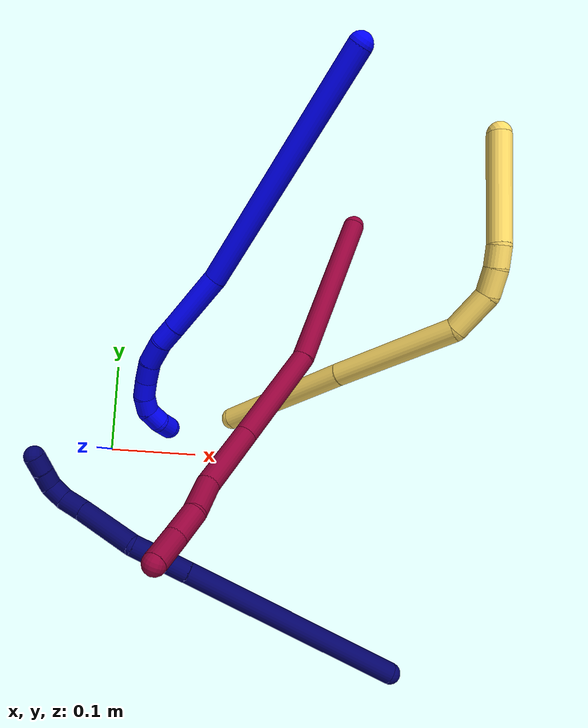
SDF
<sdf version="1.7">
 <world name="default">
  <model name="1">
   <static>0</static>
   <link name="1">
    <collision name="collision-cylinder-e_1_1_4">
     <pose>-0.006929 -0.001132 -0.133533 3.13311 -0.051844 -2.81745</pose>
     <geometry><cylinder><radius>0.0125</radius><length>0.267435</length></cylinder></geometry>
     <surface>
      <friction><ode><mu>1.16</mu><mu2>1.16</mu2><slip1>0</slip1><slip2>0</slip2></ode></friction>
      <contact><ode><kp>1e+06</kp><kd>1</kd><max_vel>0</max_vel><min_depth>0.001</min_depth></ode></contact>
     </surface>
    </collision>
    <visual name="visual-cylinder-e_1_1_4">
     <pose>-0.006929 -0.001132 -0.133533 3.13311 -0.051844 -2.81745</pose>
     <geometry><cylinder><radius>0.0125</radius><length>0.267435</length></cylinder></geometry>
     <material><ambient>0 0 1 1</ambient></material>
    </visual>
    <collision name="collision-cylinder-e_2_4_5">
     <pose>-0.017093 0.003114 -0.302254 -2.98992 -0.090601 1.07585</pose>
     <geometry><cylinder><radius>0.0125</radius><length>0.071485</length></cylinder></geometry>
     <surface>
      <friction><ode><mu>1.16</mu><mu2>1.16</mu2><slip1>0</slip1><slip2>0</slip2></ode></friction>
      <contact><ode><kp>1e+06</kp><kd>1</kd><max_vel>0</max_vel><min_depth>0.001</min_depth></ode></contact>
     </surface>
    </collision>
    <visual name="visual-cylinder-e_2_4_5">
     <pose>-0.017093 0.003114 -0.302254 -2.98992 -0.090601 1.07585</pose>
     <geometry><cylinder><radius>0.0125</radius><length>0.071485</length></cylinder></geometry>
     <material><ambient>0 0 1 1</ambient></material>
    </visual>
    <collision name="collision-cylinder-e_3_5_6">
     <pose>-0.020942 0.010312 -0.349431 -2.99099 -0.050726 0.648741</pose>
     <geometry><cylinder><radius>0.0125</radius><length>0.024286</length></cylinder></geometry>
     <surface>
      <friction><ode><mu>1.16</mu><mu2>1.16</mu2><slip1>0</slip1><slip2>0</slip2></ode></friction>
      <contact><ode><kp>1e+06</kp><kd>1</kd><max_vel>0</max_vel><min_depth>0.001</min_depth></ode></contact>
     </surface>
    </collision>
    <visual name="visual-cylinder-e_3_5_6">
     <pose>-0.020942 0.010312 -0.349431 -2.99099 -0.050726 0.648741</pose>
     <geometry><cylinder><radius>0.0125</radius><length>0.024286</length></cylinder></geometry>
     <material><ambient>0 0 1 1</ambient></material>
    </visual>
    <collision name="collision-cylinder-e_4_6_7">
     <pose>-0.021105 0.011157 -0.376634 3.07763 0.029693 0.869063</pose>
     <geometry><cylinder><radius>0.0125</radius><length>0.0305</length></cylinder></geometry>
     <surface>
      <friction><ode><mu>1.16</mu><mu2>1.16</mu2><slip1>0</slip1><slip2>0</slip2></ode></friction>
      <contact><ode><kp>1e+06</kp><kd>1</kd><max_vel>0</max_vel><min_depth>0.001</min_depth></ode></contact>
     </surface>
    </collision>
    <visual name="visual-cylinder-e_4_6_7">
     <pose>-0.021105 0.011157 -0.376634 3.07763 0.029693 0.869063</pose>
     <geometry><cylinder><radius>0.0125</radius><length>0.0305</length></cylinder></geometry>
     <material><ambient>0 0 1 1</ambient></material>
    </visual>
    <collision name="collision-cylinder-e_5_7_8">
     <pose>-0.021077 0.006591 -0.402961 2.82909 -0.036354 -0.229777</pose>
     <geometry><cylinder><radius>0.0125</radius><length>0.023377</length></cylinder></geometry>
     <surface>
      <friction><ode><mu>1.16</mu><mu2>1.16</mu2><slip1>0</slip1><slip2>0</slip2></ode></friction>
      <contact><ode><kp>1e+06</kp><kd>1</kd><max_vel>0</max_vel><min_depth>0.001</min_depth></ode></contact>
     </surface>
    </collision>
    <visual name="visual-cylinder-e_5_7_8">
     <pose>-0.021077 0.006591 -0.402961 2.82909 -0.036354 -0.229777</pose>
     <geometry><cylinder><radius>0.0125</radius><length>0.023377</length></cylinder></geometry>
     <material><ambient>0 0 1 1</ambient></material>
    </visual>
    <collision name="collision-cylinder-e_6_8_9">
     <pose>-0.02314 -0.00082 -0.424156 2.77935 -0.150813 -0.78255</pose>
     <geometry><cylinder><radius>0.0125</radius><length>0.021806</length></cylinder></geometry>
     <surface>
      <friction><ode><mu>1.16</mu><mu2>1.16</mu2><slip1>0</slip1><slip2>0</slip2></ode></friction>
      <contact><ode><kp>1e+06</kp><kd>1</kd><max_vel>0</max_vel><min_depth>0.001</min_depth></ode></contact>
     </surface>
    </collision>
    <visual name="visual-cylinder-e_6_8_9">
     <pose>-0.02314 -0.00082 -0.424156 2.77935 -0.150813 -0.78255</pose>
     <geometry><cylinder><radius>0.0125</radius><length>0.021806</length></cylinder></geometry>
     <material><ambient>0 0 1 1</ambient></material>
    </visual>
    <collision name="collision-cylinder-e_7_9_10">
     <pose>-0.026185 -0.010979 -0.441958 2.45425 -0.139893 -0.38665</pose>
     <geometry><cylinder><radius>0.0125</radius><length>0.020181</length></cylinder></geometry>
     <surface>
      <friction><ode><mu>1.16</mu><mu2>1.16</mu2><slip1>0</slip1><slip2>0</slip2></ode></friction>
      <contact><ode><kp>1e+06</kp><kd>1</kd><max_vel>0</max_vel><min_depth>0.001</min_depth></ode></contact>
     </surface>
    </collision>
    <visual name="visual-cylinder-e_7_9_10">
     <pose>-0.026185 -0.010979 -0.441958 2.45425 -0.139893 -0.38665</pose>
     <geometry><cylinder><radius>0.0125</radius><length>0.020181</length></cylinder></geometry>
     <material><ambient>0 0 1 1</ambient></material>
    </visual>
    <collision name="collision-cylinder-e_8_10_11">
     <pose>-0.02837 -0.026939 -0.453546 1.95273 -0.074853 -0.11067</pose>
     <geometry><cylinder><radius>0.0125</radius><length>0.020792</length></cylinder></geometry>
     <surface>
      <friction><ode><mu>1.16</mu><mu2>1.16</mu2><slip1>0</slip1><slip2>0</slip2></ode></friction>
      <contact><ode><kp>1e+06</kp><kd>1</kd><max_vel>0</max_vel><min_depth>0.001</min_depth></ode></contact>
     </surface>
    </collision>
    <visual name="visual-cylinder-e_8_10_11">
     <pose>-0.02837 -0.026939 -0.453546 1.95273 -0.074853 -0.11067</pose>
     <geometry><cylinder><radius>0.0125</radius><length>0.020792</length></cylinder></geometry>
     <material><ambient>0 0 1 1</ambient></material>
    </visual>
    <collision name="collision-cylinder-e_9_11_2">
     <pose>-0.025831 -0.045242 -0.46128 1.99012 0.335649 0.510626</pose>
     <geometry><cylinder><radius>0.0125</radius><length>0.020137</length></cylinder></geometry>
     <surface>
      <friction><ode><mu>1.16</mu><mu2>1.16</mu2><slip1>0</slip1><slip2>0</slip2></ode></friction>
      <contact><ode><kp>1e+06</kp><kd>1</kd><max_vel>0</max_vel><min_depth>0.001</min_depth></ode></contact>
     </surface>
    </collision>
    <visual name="visual-cylinder-e_9_11_2">
     <pose>-0.025831 -0.045242 -0.46128 1.99012 0.335649 0.510626</pose>
     <geometry><cylinder><radius>0.0125</radius><length>0.020137</length></cylinder></geometry>
     <material><ambient>0 0 1 1</ambient></material>
    </visual>
    <collision name="collision-sphere-2">
     <pose>-0.022514 -0.053925 -0.465151 0 -0 0</pose>
     <geometry><sphere><radius>0.0125</radius></sphere></geometry>
     <surface>
      <friction><ode><mu>1.16</mu><mu2>1.16</mu2><slip1>0</slip1><slip2>0</slip2></ode></friction>
      <contact><ode><kp>1e+06</kp><kd>1</kd><max_vel>0</max_vel><min_depth>0.001</min_depth></ode></contact>
     </surface>
    </collision>
    <visual name="visual-sphere-2">
     <pose>-0.022514 -0.053925 -0.465151 0 -0 0</pose>
     <geometry><sphere><radius>0.0125</radius></sphere></geometry>
     <material><ambient>0 0 1 1</ambient></material>
    </visual>
    <collision name="collision-sphere-11">
     <pose>-0.029147 -0.036559 -0.45741 0 -0 0</pose>
     <geometry><sphere><radius>0.0125</radius></sphere></geometry>
     <surface>
      <friction><ode><mu>1.16</mu><mu2>1.16</mu2><slip1>0</slip1><slip2>0</slip2></ode></friction>
      <contact><ode><kp>1e+06</kp><kd>1</kd><max_vel>0</max_vel><min_depth>0.001</min_depth></ode></contact>
     </surface>
    </collision>
    <visual name="visual-sphere-11">
     <pose>-0.029147 -0.036559 -0.45741 0 -0 0</pose>
     <geometry><sphere><radius>0.0125</radius></sphere></geometry>
     <material><ambient>0 0 1 1</ambient></material>
    </visual>
    <collision name="collision-sphere-10">
     <pose>-0.027592 -0.017319 -0.449682 0 -0 0</pose>
     <geometry><sphere><radius>0.0125</radius></sphere></geometry>
     <surface>
      <friction><ode><mu>1.16</mu><mu2>1.16</mu2><slip1>0</slip1><slip2>0</slip2></ode></friction>
      <contact><ode><kp>1e+06</kp><kd>1</kd><max_vel>0</max_vel><min_depth>0.001</min_depth></ode></contact>
     </surface>
    </collision>
    <visual name="visual-sphere-10">
     <pose>-0.027592 -0.017319 -0.449682 0 -0 0</pose>
     <geometry><sphere><radius>0.0125</radius></sphere></geometry>
     <material><ambient>0 0 1 1</ambient></material>
    </visual>
    <collision name="collision-sphere-9">
     <pose>-0.024778 -0.00464 -0.434235 0 -0 0</pose>
     <geometry><sphere><radius>0.0125</radius></sphere></geometry>
     <surface>
      <friction><ode><mu>1.16</mu><mu2>1.16</mu2><slip1>0</slip1><slip2>0</slip2></ode></friction>
      <contact><ode><kp>1e+06</kp><kd>1</kd><max_vel>0</max_vel><min_depth>0.001</min_depth></ode></contact>
     </surface>
    </collision>
    <visual name="visual-sphere-9">
     <pose>-0.024778 -0.00464 -0.434235 0 -0 0</pose>
     <geometry><sphere><radius>0.0125</radius></sphere></geometry>
     <material><ambient>0 0 1 1</ambient></material>
    </visual>
    <collision name="collision-sphere-4">
     <pose>-0.013859 -0.002264 -0.267066 0 -0 0</pose>
     <geometry><sphere><radius>0.0125</radius></sphere></geometry>
     <surface>
      <friction><ode><mu>1.16</mu><mu2>1.16</mu2><slip1>0</slip1><slip2>0</slip2></ode></friction>
      <contact><ode><kp>1e+06</kp><kd>1</kd><max_vel>0</max_vel><min_depth>0.001</min_depth></ode></contact>
     </surface>
    </collision>
    <visual name="visual-sphere-4">
     <pose>-0.013859 -0.002264 -0.267066 0 -0 0</pose>
     <geometry><sphere><radius>0.0125</radius></sphere></geometry>
     <material><ambient>0 0 1 1</ambient></material>
    </visual>
    <collision name="collision-sphere-1">
     <geometry><sphere><radius>0.0125</radius></sphere></geometry>
     <surface>
      <friction><ode><mu>1.16</mu><mu2>1.16</mu2><slip1>0</slip1><slip2>0</slip2></ode></friction>
      <contact><ode><kp>1e+06</kp><kd>1</kd><max_vel>0</max_vel><min_depth>0.001</min_depth></ode></contact>
     </surface>
    </collision>
    <visual name="visual-sphere-1">
     <geometry><sphere><radius>0.0125</radius></sphere></geometry>
     <material><ambient>0 0 1 1</ambient></material>
    </visual>
    <collision name="collision-sphere-8">
     <pose>-0.021502 0.003 -0.414076 0 -0 0</pose>
     <geometry><sphere><radius>0.0125</radius></sphere></geometry>
     <surface>
      <friction><ode><mu>1.16</mu><mu2>1.16</mu2><slip1>0</slip1><slip2>0</slip2></ode></friction>
      <contact><ode><kp>1e+06</kp><kd>1</kd><max_vel>0</max_vel><min_depth>0.001</min_depth></ode></contact>
     </surface>
    </collision>
    <visual name="visual-sphere-8">
     <pose>-0.021502 0.003 -0.414076 0 -0 0</pose>
     <geometry><sphere><radius>0.0125</radius></sphere></geometry>
     <material><ambient>0 0 1 1</ambient></material>
    </visual>
    <collision name="collision-sphere-5">
     <pose>-0.020327 0.008492 -0.337441 0 -0 0</pose>
     <geometry><sphere><radius>0.0125</radius></sphere></geometry>
     <surface>
      <friction><ode><mu>1.16</mu><mu2>1.16</mu2><slip1>0</slip1><slip2>0</slip2></ode></friction>
      <contact><ode><kp>1e+06</kp><kd>1</kd><max_vel>0</max_vel><min_depth>0.001</min_depth></ode></contact>
     </surface>
    </collision>
    <visual name="visual-sphere-5">
     <pose>-0.020327 0.008492 -0.337441 0 -0 0</pose>
     <geometry><sphere><radius>0.0125</radius></sphere></geometry>
     <material><ambient>0 0 1 1</ambient></material>
    </visual>
    <collision name="collision-sphere-6">
     <pose>-0.021558 0.012131 -0.361421 0 -0 0</pose>
     <geometry><sphere><radius>0.0125</radius></sphere></geometry>
     <surface>
      <friction><ode><mu>1.16</mu><mu2>1.16</mu2><slip1>0</slip1><slip2>0</slip2></ode></friction>
      <contact><ode><kp>1e+06</kp><kd>1</kd><max_vel>0</max_vel><min_depth>0.001</min_depth></ode></contact>
     </surface>
    </collision>
    <visual name="visual-sphere-6">
     <pose>-0.021558 0.012131 -0.361421 0 -0 0</pose>
     <geometry><sphere><radius>0.0125</radius></sphere></geometry>
     <material><ambient>0 0 1 1</ambient></material>
    </visual>
    <collision name="collision-sphere-7">
     <pose>-0.020652 0.010183 -0.391846 0 -0 0</pose>
     <geometry><sphere><radius>0.0125</radius></sphere></geometry>
     <surface>
      <friction><ode><mu>1.16</mu><mu2>1.16</mu2><slip1>0</slip1><slip2>0</slip2></ode></friction>
      <contact><ode><kp>1e+06</kp><kd>1</kd><max_vel>0</max_vel><min_depth>0.001</min_depth></ode></contact>
     </surface>
    </collision>
    <visual name="visual-sphere-7">
     <pose>-0.020652 0.010183 -0.391846 0 -0 0</pose>
     <geometry><sphere><radius>0.0125</radius></sphere></geometry>
     <material><ambient>0 0 1 1</ambient></material>
    </visual>
    <inertial>
     <pose>-0.013726 -0.002092 -0.247198 0 -0 0</pose>
     <mass>0.5</mass>
     <inertia>
      <ixx>-0.001972</ixx>
      <ixy>0</ixy>
      <ixz>0</ixz>
      <iyy>0.001014</iyy>
      <iyz>0</iyz>
      <izz>6.3e-05</izz>
     </inertia>
    </inertial>
   </link>
   <pose>0.244067 0.379338 0.269303 0.677601 0.80687 1.79433</pose>
  </model>
  <model name="5">
   <static>0</static>
   <link name="5">
    <collision name="collision-cylinder-e_1_1_4">
     <pose>0.017481 -0.019871 0.074131 0.26189 0.22395 0.029616</pose>
     <geometry><cylinder><radius>0.0125</radius><length>0.157427</length></cylinder></geometry>
     <surface>
      <friction><ode><mu>1.16</mu><mu2>1.16</mu2><slip1>0</slip1><slip2>0</slip2></ode></friction>
      <contact><ode><kp>1e+06</kp><kd>1</kd><max_vel>0</max_vel><min_depth>0.001</min_depth></ode></contact>
     </surface>
    </collision>
    <visual name="visual-cylinder-e_1_1_4">
     <pose>0.017481 -0.019871 0.074131 0.26189 0.22395 0.029616</pose>
     <geometry><cylinder><radius>0.0125</radius><length>0.157427</length></cylinder></geometry>
     <material><ambient>1 0.858824 0.4 1</ambient></material>
    </visual>
    <collision name="collision-cylinder-e_2_4_5">
     <pose>0.051144 -0.052867 0.213413 0.198809 0.23884 0.023933</pose>
     <geometry><cylinder><radius>0.0125</radius><length>0.136803</length></cylinder></geometry>
     <surface>
      <friction><ode><mu>1.16</mu><mu2>1.16</mu2><slip1>0</slip1><slip2>0</slip2></ode></friction>
      <contact><ode><kp>1e+06</kp><kd>1</kd><max_vel>0</max_vel><min_depth>0.001</min_depth></ode></contact>
     </surface>
    </collision>
    <visual name="visual-cylinder-e_2_4_5">
     <pose>0.051144 -0.052867 0.213413 0.198809 0.23884 0.023933</pose>
     <geometry><cylinder><radius>0.0125</radius><length>0.136803</length></cylinder></geometry>
     <material><ambient>1 0.858824 0.4 1</ambient></material>
    </visual>
    <collision name="collision-cylinder-e_3_5_6">
     <pose>0.062354 -0.067705 0.300242 0.078825 -0.224807 -0.008902</pose>
     <geometry><cylinder><radius>0.0125</radius><length>0.044615</length></cylinder></geometry>
     <surface>
      <friction><ode><mu>1.16</mu><mu2>1.16</mu2><slip1>0</slip1><slip2>0</slip2></ode></friction>
      <contact><ode><kp>1e+06</kp><kd>1</kd><max_vel>0</max_vel><min_depth>0.001</min_depth></ode></contact>
     </surface>
    </collision>
    <visual name="visual-cylinder-e_3_5_6">
     <pose>0.062354 -0.067705 0.300242 0.078825 -0.224807 -0.008902</pose>
     <geometry><cylinder><radius>0.0125</radius><length>0.044615</length></cylinder></geometry>
     <material><ambient>1 0.858824 0.4 1</ambient></material>
    </visual>
    <collision name="collision-cylinder-e_4_6_7">
     <pose>0.049042 -0.071817 0.332297 0.227256 -0.664305 -0.078686</pose>
     <geometry><cylinder><radius>0.0125</radius><length>0.027053</length></cylinder></geometry>
     <surface>
      <friction><ode><mu>1.16</mu><mu2>1.16</mu2><slip1>0</slip1><slip2>0</slip2></ode></friction>
      <contact><ode><kp>1e+06</kp><kd>1</kd><max_vel>0</max_vel><min_depth>0.001</min_depth></ode></contact>
     </surface>
    </collision>
    <visual name="visual-cylinder-e_4_6_7">
     <pose>0.049042 -0.071817 0.332297 0.227256 -0.664305 -0.078686</pose>
     <geometry><cylinder><radius>0.0125</radius><length>0.027053</length></cylinder></geometry>
     <material><ambient>1 0.858824 0.4 1</ambient></material>
    </visual>
    <collision name="collision-cylinder-e_5_7_8">
     <pose>0.032458 -0.075436 0.349831 0.168794 -0.848789 -0.076415</pose>
     <geometry><cylinder><radius>0.0125</radius><length>0.021972</length></cylinder></geometry>
     <surface>
      <friction><ode><mu>1.16</mu><mu2>1.16</mu2><slip1>0</slip1><slip2>0</slip2></ode></friction>
      <contact><ode><kp>1e+06</kp><kd>1</kd><max_vel>0</max_vel><min_depth>0.001</min_depth></ode></contact>
     </surface>
    </collision>
    <visual name="visual-cylinder-e_5_7_8">
     <pose>0.032458 -0.075436 0.349831 0.168794 -0.848789 -0.076415</pose>
     <geometry><cylinder><radius>0.0125</radius><length>0.021972</length></cylinder></geometry>
     <material><ambient>1 0.858824 0.4 1</ambient></material>
    </visual>
    <collision name="collision-cylinder-e_6_8_2">
     <pose>-0.023118 -0.069622 0.386204 -0.236278 -1.0051 0.130286</pose>
     <geometry><cylinder><radius>0.0125</radius><length>0.11213</length></cylinder></geometry>
     <surface>
      <friction><ode><mu>1.16</mu><mu2>1.16</mu2><slip1>0</slip1><slip2>0</slip2></ode></friction>
      <contact><ode><kp>1e+06</kp><kd>1</kd><max_vel>0</max_vel><min_depth>0.001</min_depth></ode></contact>
     </surface>
    </collision>
    <visual name="visual-cylinder-e_6_8_2">
     <pose>-0.023118 -0.069622 0.386204 -0.236278 -1.0051 0.130286</pose>
     <geometry><cylinder><radius>0.0125</radius><length>0.11213</length></cylinder></geometry>
     <material><ambient>1 0.858824 0.4 1</ambient></material>
    </visual>
    <collision name="collision-sphere-2">
     <pose>-0.070449 -0.062587 0.41542 0 -0 0</pose>
     <geometry><sphere><radius>0.0125</radius></sphere></geometry>
     <surface>
      <friction><ode><mu>1.16</mu><mu2>1.16</mu2><slip1>0</slip1><slip2>0</slip2></ode></friction>
      <contact><ode><kp>1e+06</kp><kd>1</kd><max_vel>0</max_vel><min_depth>0.001</min_depth></ode></contact>
     </surface>
    </collision>
    <visual name="visual-sphere-2">
     <pose>-0.070449 -0.062587 0.41542 0 -0 0</pose>
     <geometry><sphere><radius>0.0125</radius></sphere></geometry>
     <material><ambient>1 0.858824 0.4 1</ambient></material>
    </visual>
    <collision name="collision-sphere-4">
     <pose>0.034962 -0.039741 0.148262 0 -0 0</pose>
     <geometry><sphere><radius>0.0125</radius></sphere></geometry>
     <surface>
      <friction><ode><mu>1.16</mu><mu2>1.16</mu2><slip1>0</slip1><slip2>0</slip2></ode></friction>
      <contact><ode><kp>1e+06</kp><kd>1</kd><max_vel>0</max_vel><min_depth>0.001</min_depth></ode></contact>
     </surface>
    </collision>
    <visual name="visual-sphere-4">
     <pose>0.034962 -0.039741 0.148262 0 -0 0</pose>
     <geometry><sphere><radius>0.0125</radius></sphere></geometry>
     <material><ambient>1 0.858824 0.4 1</ambient></material>
    </visual>
    <collision name="collision-sphere-1">
     <geometry><sphere><radius>0.0125</radius></sphere></geometry>
     <surface>
      <friction><ode><mu>1.16</mu><mu2>1.16</mu2><slip1>0</slip1><slip2>0</slip2></ode></friction>
      <contact><ode><kp>1e+06</kp><kd>1</kd><max_vel>0</max_vel><min_depth>0.001</min_depth></ode></contact>
     </surface>
    </collision>
    <visual name="visual-sphere-1">
     <geometry><sphere><radius>0.0125</radius></sphere></geometry>
     <material><ambient>1 0.858824 0.4 1</ambient></material>
    </visual>
    <collision name="collision-sphere-8">
     <pose>0.024213 -0.076656 0.356988 0 -0 0</pose>
     <geometry><sphere><radius>0.0125</radius></sphere></geometry>
     <surface>
      <friction><ode><mu>1.16</mu><mu2>1.16</mu2><slip1>0</slip1><slip2>0</slip2></ode></friction>
      <contact><ode><kp>1e+06</kp><kd>1</kd><max_vel>0</max_vel><min_depth>0.001</min_depth></ode></contact>
     </surface>
    </collision>
    <visual name="visual-sphere-8">
     <pose>0.024213 -0.076656 0.356988 0 -0 0</pose>
     <geometry><sphere><radius>0.0125</radius></sphere></geometry>
     <material><ambient>1 0.858824 0.4 1</ambient></material>
    </visual>
    <collision name="collision-sphere-5">
     <pose>0.067326 -0.065993 0.278564 0 -0 0</pose>
     <geometry><sphere><radius>0.0125</radius></sphere></geometry>
     <surface>
      <friction><ode><mu>1.16</mu><mu2>1.16</mu2><slip1>0</slip1><slip2>0</slip2></ode></friction>
      <contact><ode><kp>1e+06</kp><kd>1</kd><max_vel>0</max_vel><min_depth>0.001</min_depth></ode></contact>
     </surface>
    </collision>
    <visual name="visual-sphere-5">
     <pose>0.067326 -0.065993 0.278564 0 -0 0</pose>
     <geometry><sphere><radius>0.0125</radius></sphere></geometry>
     <material><ambient>1 0.858824 0.4 1</ambient></material>
    </visual>
    <collision name="collision-sphere-6">
     <pose>0.057381 -0.069418 0.321921 0 -0 0</pose>
     <geometry><sphere><radius>0.0125</radius></sphere></geometry>
     <surface>
      <friction><ode><mu>1.16</mu><mu2>1.16</mu2><slip1>0</slip1><slip2>0</slip2></ode></friction>
      <contact><ode><kp>1e+06</kp><kd>1</kd><max_vel>0</max_vel><min_depth>0.001</min_depth></ode></contact>
     </surface>
    </collision>
    <visual name="visual-sphere-6">
     <pose>0.057381 -0.069418 0.321921 0 -0 0</pose>
     <geometry><sphere><radius>0.0125</radius></sphere></geometry>
     <material><ambient>1 0.858824 0.4 1</ambient></material>
    </visual>
    <collision name="collision-sphere-7">
     <pose>0.040702 -0.074217 0.342673 0 -0 0</pose>
     <geometry><sphere><radius>0.0125</radius></sphere></geometry>
     <surface>
      <friction><ode><mu>1.16</mu><mu2>1.16</mu2><slip1>0</slip1><slip2>0</slip2></ode></friction>
      <contact><ode><kp>1e+06</kp><kd>1</kd><max_vel>0</max_vel><min_depth>0.001</min_depth></ode></contact>
     </surface>
    </collision>
    <visual name="visual-sphere-7">
     <pose>0.040702 -0.074217 0.342673 0 -0 0</pose>
     <geometry><sphere><radius>0.0125</radius></sphere></geometry>
     <material><ambient>1 0.858824 0.4 1</ambient></material>
    </visual>
    <inertial>
     <pose>0.023956 -0.049577 0.228484 0 -0 0</pose>
     <mass>0.5</mass>
     <inertia>
      <ixx>0.00063</ixx>
      <ixy>0</ixy>
      <ixz>0</ixz>
      <iyy>0.000687</iyy>
      <iyz>0</iyz>
      <izz>0.000127</izz>
     </inertia>
    </inertial>
   </link>
   <pose>0.142287 0.045634 0.011493 -1.19125 -0.134294 -0.985437</pose>
  </model>
  <model name="7">
   <static>0</static>
   <link name="7">
    <collision name="collision-cylinder-e_1_1_4">
     <pose>-0.115704 0.036124 -0.055695 -2.5662 -1.04991 2.19691</pose>
     <geometry><cylinder><radius>0.0125</radius><length>0.26679</length></cylinder></geometry>
     <surface>
      <friction><ode><mu>1.16</mu><mu2>1.16</mu2><slip1>0</slip1><slip2>0</slip2></ode></friction>
      <contact><ode><kp>1e+06</kp><kd>1</kd><max_vel>0</max_vel><min_depth>0.001</min_depth></ode></contact>
     </surface>
    </collision>
    <visual name="visual-cylinder-e_1_1_4">
     <pose>-0.115704 0.036124 -0.055695 -2.5662 -1.04991 2.19691</pose>
     <geometry><cylinder><radius>0.0125</radius><length>0.26679</length></cylinder></geometry>
     <material><ambient>0.003922 0 0.403922 1</ambient></material>
    </visual>
    <collision name="collision-cylinder-e_2_4_5">
     <pose>-0.261477 0.079698 -0.126165 -2.67452 -1.0677 2.37639</pose>
     <geometry><cylinder><radius>0.0125</radius><length>0.068643</length></cylinder></geometry>
     <surface>
      <friction><ode><mu>1.16</mu><mu2>1.16</mu2><slip1>0</slip1><slip2>0</slip2></ode></friction>
      <contact><ode><kp>1e+06</kp><kd>1</kd><max_vel>0</max_vel><min_depth>0.001</min_depth></ode></contact>
     </surface>
    </collision>
    <visual name="visual-cylinder-e_2_4_5">
     <pose>-0.261477 0.079698 -0.126165 -2.67452 -1.0677 2.37639</pose>
     <geometry><cylinder><radius>0.0125</radius><length>0.068643</length></cylinder></geometry>
     <material><ambient>0.003922 0 0.403922 1</ambient></material>
    </visual>
    <collision name="collision-cylinder-e_3_5_6">
     <pose>-0.319494 0.080562 -0.163739 2.86033 -0.866818 -2.54784</pose>
     <geometry><cylinder><radius>0.0125</radius><length>0.073328</length></cylinder></geometry>
     <surface>
      <friction><ode><mu>1.16</mu><mu2>1.16</mu2><slip1>0</slip1><slip2>0</slip2></ode></friction>
      <contact><ode><kp>1e+06</kp><kd>1</kd><max_vel>0</max_vel><min_depth>0.001</min_depth></ode></contact>
     </surface>
    </collision>
    <visual name="visual-cylinder-e_3_5_6">
     <pose>-0.319494 0.080562 -0.163739 2.86033 -0.866818 -2.54784</pose>
     <geometry><cylinder><radius>0.0125</radius><length>0.073328</length></cylinder></geometry>
     <material><ambient>0.003922 0 0.403922 1</ambient></material>
    </visual>
    <collision name="collision-cylinder-e_4_6_7">
     <pose>-0.358935 0.071821 -0.195044 2.89352 -0.918717 -2.64778</pose>
     <geometry><cylinder><radius>0.0125</radius><length>0.028918</length></cylinder></geometry>
     <surface>
      <friction><ode><mu>1.16</mu><mu2>1.16</mu2><slip1>0</slip1><slip2>0</slip2></ode></friction>
      <contact><ode><kp>1e+06</kp><kd>1</kd><max_vel>0</max_vel><min_depth>0.001</min_depth></ode></contact>
     </surface>
    </collision>
    <visual name="visual-cylinder-e_4_6_7">
     <pose>-0.358935 0.071821 -0.195044 2.89352 -0.918717 -2.64778</pose>
     <geometry><cylinder><radius>0.0125</radius><length>0.028918</length></cylinder></geometry>
     <material><ambient>0.003922 0 0.403922 1</ambient></material>
    </visual>
    <collision name="collision-cylinder-e_5_7_8">
     <pose>-0.377986 0.07296 -0.210815 -2.71596 -0.758491 2.14792</pose>
     <geometry><cylinder><radius>0.0125</radius><length>0.021979</length></cylinder></geometry>
     <surface>
      <friction><ode><mu>1.16</mu><mu2>1.16</mu2><slip1>0</slip1><slip2>0</slip2></ode></friction>
      <contact><ode><kp>1e+06</kp><kd>1</kd><max_vel>0</max_vel><min_depth>0.001</min_depth></ode></contact>
     </surface>
    </collision>
    <visual name="visual-cylinder-e_5_7_8">
     <pose>-0.377986 0.07296 -0.210815 -2.71596 -0.758491 2.14792</pose>
     <geometry><cylinder><radius>0.0125</radius><length>0.021979</length></cylinder></geometry>
     <material><ambient>0.003922 0 0.403922 1</ambient></material>
    </visual>
    <collision name="collision-cylinder-e_6_8_9">
     <pose>-0.389289 0.083076 -0.224403 -2.31827 -0.382662 0.83512</pose>
     <geometry><cylinder><radius>0.0125</radius><length>0.020055</length></cylinder></geometry>
     <surface>
      <friction><ode><mu>1.16</mu><mu2>1.16</mu2><slip1>0</slip1><slip2>0</slip2></ode></friction>
      <contact><ode><kp>1e+06</kp><kd>1</kd><max_vel>0</max_vel><min_depth>0.001</min_depth></ode></contact>
     </surface>
    </collision>
    <visual name="visual-cylinder-e_6_8_9">
     <pose>-0.389289 0.083076 -0.224403 -2.31827 -0.382662 0.83512</pose>
     <geometry><cylinder><radius>0.0125</radius><length>0.020055</length></cylinder></geometry>
     <material><ambient>0.003922 0 0.403922 1</ambient></material>
    </visual>
    <collision name="collision-cylinder-e_7_9_2">
     <pose>-0.397101 0.09619 -0.237564 -2.39773 -0.412696 0.985022</pose>
     <geometry><cylinder><radius>0.0125</radius><length>0.020287</length></cylinder></geometry>
     <surface>
      <friction><ode><mu>1.16</mu><mu2>1.16</mu2><slip1>0</slip1><slip2>0</slip2></ode></friction>
      <contact><ode><kp>1e+06</kp><kd>1</kd><max_vel>0</max_vel><min_depth>0.001</min_depth></ode></contact>
     </surface>
    </collision>
    <visual name="visual-cylinder-e_7_9_2">
     <pose>-0.397101 0.09619 -0.237564 -2.39773 -0.412696 0.985022</pose>
     <geometry><cylinder><radius>0.0125</radius><length>0.020287</length></cylinder></geometry>
     <material><ambient>0.003922 0 0.403922 1</ambient></material>
    </visual>
    <collision name="collision-sphere-2">
     <pose>-0.401169 0.102482 -0.244402 0 -0 0</pose>
     <geometry><sphere><radius>0.0125</radius></sphere></geometry>
     <surface>
      <friction><ode><mu>1.16</mu><mu2>1.16</mu2><slip1>0</slip1><slip2>0</slip2></ode></friction>
      <contact><ode><kp>1e+06</kp><kd>1</kd><max_vel>0</max_vel><min_depth>0.001</min_depth></ode></contact>
     </surface>
    </collision>
    <visual name="visual-sphere-2">
     <pose>-0.401169 0.102482 -0.244402 0 -0 0</pose>
     <geometry><sphere><radius>0.0125</radius></sphere></geometry>
     <material><ambient>0.003922 0 0.403922 1</ambient></material>
    </visual>
    <collision name="collision-sphere-9">
     <pose>-0.393033 0.089898 -0.230727 0 -0 0</pose>
     <geometry><sphere><radius>0.0125</radius></sphere></geometry>
     <surface>
      <friction><ode><mu>1.16</mu><mu2>1.16</mu2><slip1>0</slip1><slip2>0</slip2></ode></friction>
      <contact><ode><kp>1e+06</kp><kd>1</kd><max_vel>0</max_vel><min_depth>0.001</min_depth></ode></contact>
     </surface>
    </collision>
    <visual name="visual-sphere-9">
     <pose>-0.393033 0.089898 -0.230727 0 -0 0</pose>
     <geometry><sphere><radius>0.0125</radius></sphere></geometry>
     <material><ambient>0.003922 0 0.403922 1</ambient></material>
    </visual>
    <collision name="collision-sphere-4">
     <pose>-0.231408 0.072247 -0.11139 0 -0 0</pose>
     <geometry><sphere><radius>0.0125</radius></sphere></geometry>
     <surface>
      <friction><ode><mu>1.16</mu><mu2>1.16</mu2><slip1>0</slip1><slip2>0</slip2></ode></friction>
      <contact><ode><kp>1e+06</kp><kd>1</kd><max_vel>0</max_vel><min_depth>0.001</min_depth></ode></contact>
     </surface>
    </collision>
    <visual name="visual-sphere-4">
     <pose>-0.231408 0.072247 -0.11139 0 -0 0</pose>
     <geometry><sphere><radius>0.0125</radius></sphere></geometry>
     <material><ambient>0.003922 0 0.403922 1</ambient></material>
    </visual>
    <collision name="collision-sphere-1">
     <geometry><sphere><radius>0.0125</radius></sphere></geometry>
     <surface>
      <friction><ode><mu>1.16</mu><mu2>1.16</mu2><slip1>0</slip1><slip2>0</slip2></ode></friction>
      <contact><ode><kp>1e+06</kp><kd>1</kd><max_vel>0</max_vel><min_depth>0.001</min_depth></ode></contact>
     </surface>
    </collision>
    <visual name="visual-sphere-1">
     <geometry><sphere><radius>0.0125</radius></sphere></geometry>
     <material><ambient>0.003922 0 0.403922 1</ambient></material>
    </visual>
    <collision name="collision-sphere-8">
     <pose>-0.385544 0.076254 -0.21808 0 -0 0</pose>
     <geometry><sphere><radius>0.0125</radius></sphere></geometry>
     <surface>
      <friction><ode><mu>1.16</mu><mu2>1.16</mu2><slip1>0</slip1><slip2>0</slip2></ode></friction>
      <contact><ode><kp>1e+06</kp><kd>1</kd><max_vel>0</max_vel><min_depth>0.001</min_depth></ode></contact>
     </surface>
    </collision>
    <visual name="visual-sphere-8">
     <pose>-0.385544 0.076254 -0.21808 0 -0 0</pose>
     <geometry><sphere><radius>0.0125</radius></sphere></geometry>
     <material><ambient>0.003922 0 0.403922 1</ambient></material>
    </visual>
    <collision name="collision-sphere-5">
     <pose>-0.291546 0.087149 -0.140941 0 -0 0</pose>
     <geometry><sphere><radius>0.0125</radius></sphere></geometry>
     <surface>
      <friction><ode><mu>1.16</mu><mu2>1.16</mu2><slip1>0</slip1><slip2>0</slip2></ode></friction>
      <contact><ode><kp>1e+06</kp><kd>1</kd><max_vel>0</max_vel><min_depth>0.001</min_depth></ode></contact>
     </surface>
    </collision>
    <visual name="visual-sphere-5">
     <pose>-0.291546 0.087149 -0.140941 0 -0 0</pose>
     <geometry><sphere><radius>0.0125</radius></sphere></geometry>
     <material><ambient>0.003922 0 0.403922 1</ambient></material>
    </visual>
    <collision name="collision-sphere-6">
     <pose>-0.347442 0.073975 -0.186538 0 -0 0</pose>
     <geometry><sphere><radius>0.0125</radius></sphere></geometry>
     <surface>
      <friction><ode><mu>1.16</mu><mu2>1.16</mu2><slip1>0</slip1><slip2>0</slip2></ode></friction>
      <contact><ode><kp>1e+06</kp><kd>1</kd><max_vel>0</max_vel><min_depth>0.001</min_depth></ode></contact>
     </surface>
    </collision>
    <visual name="visual-sphere-6">
     <pose>-0.347442 0.073975 -0.186538 0 -0 0</pose>
     <geometry><sphere><radius>0.0125</radius></sphere></geometry>
     <material><ambient>0.003922 0 0.403922 1</ambient></material>
    </visual>
    <collision name="collision-sphere-7">
     <pose>-0.370427 0.069667 -0.203549 0 -0 0</pose>
     <geometry><sphere><radius>0.0125</radius></sphere></geometry>
     <surface>
      <friction><ode><mu>1.16</mu><mu2>1.16</mu2><slip1>0</slip1><slip2>0</slip2></ode></friction>
      <contact><ode><kp>1e+06</kp><kd>1</kd><max_vel>0</max_vel><min_depth>0.001</min_depth></ode></contact>
     </surface>
    </collision>
    <visual name="visual-sphere-7">
     <pose>-0.370427 0.069667 -0.203549 0 -0 0</pose>
     <geometry><sphere><radius>0.0125</radius></sphere></geometry>
     <material><ambient>0.003922 0 0.403922 1</ambient></material>
    </visual>
    <inertial>
     <pose>-0.213591 0.056627 -0.110239 0 -0 0</pose>
     <mass>0.5</mass>
     <inertia>
      <ixx>0.000116</ixx>
      <ixy>0</ixy>
      <ixz>0</ixz>
      <iyy>0.002105</iyy>
      <iyz>0</iyz>
      <izz>0.000987</izz>
     </inertia>
    </inertial>
   </link>
   <pose>0.343856 -0.239803 0.011484 1.21221 0.086562 0.095121</pose>
  </model>
  <model name="8">
   <static>0</static>
   <link name="8">
    <collision name="collision-cylinder-e_1_1_4">
     <pose>0.013217 -0.04759 -0.084128 2.62679 0.135903 0.505988</pose>
     <geometry><cylinder><radius>0.0125</radius><length>0.19511</length></cylinder></geometry>
     <surface>
      <friction><ode><mu>1.16</mu><mu2>1.16</mu2><slip1>0</slip1><slip2>0</slip2></ode></friction>
      <contact><ode><kp>1e+06</kp><kd>1</kd><max_vel>0</max_vel><min_depth>0.001</min_depth></ode></contact>
     </surface>
    </collision>
    <visual name="visual-cylinder-e_1_1_4">
     <pose>0.013217 -0.04759 -0.084128 2.62679 0.135903 0.505988</pose>
     <geometry><cylinder><radius>0.0125</radius><length>0.19511</length></cylinder></geometry>
     <material><ambient>0.584314 0 0.227451 1</ambient></material>
    </visual>
    <collision name="collision-cylinder-e_2_4_5">
     <pose>0.020817 -0.127021 -0.216292 2.55621 -0.09716 -0.319918</pose>
     <geometry><cylinder><radius>0.0125</radius><length>0.115808</length></cylinder></geometry>
     <surface>
      <friction><ode><mu>1.16</mu><mu2>1.16</mu2><slip1>0</slip1><slip2>0</slip2></ode></friction>
      <contact><ode><kp>1e+06</kp><kd>1</kd><max_vel>0</max_vel><min_depth>0.001</min_depth></ode></contact>
     </surface>
    </collision>
    <visual name="visual-cylinder-e_2_4_5">
     <pose>0.020817 -0.127021 -0.216292 2.55621 -0.09716 -0.319918</pose>
     <geometry><cylinder><radius>0.0125</radius><length>0.115808</length></cylinder></geometry>
     <material><ambient>0.584314 0 0.227451 1</ambient></material>
    </visual>
    <collision name="collision-cylinder-e_3_5_6">
     <pose>0.014734 -0.188898 -0.290324 2.28425 -0.011727 -0.025658</pose>
     <geometry><cylinder><radius>0.0125</radius><length>0.079452</length></cylinder></geometry>
     <surface>
      <friction><ode><mu>1.16</mu><mu2>1.16</mu2><slip1>0</slip1><slip2>0</slip2></ode></friction>
      <contact><ode><kp>1e+06</kp><kd>1</kd><max_vel>0</max_vel><min_depth>0.001</min_depth></ode></contact>
     </surface>
    </collision>
    <visual name="visual-cylinder-e_3_5_6">
     <pose>0.014734 -0.188898 -0.290324 2.28425 -0.011727 -0.025658</pose>
     <geometry><cylinder><radius>0.0125</radius><length>0.079452</length></cylinder></geometry>
     <material><ambient>0.584314 0 0.227451 1</ambient></material>
    </visual>
    <collision name="collision-cylinder-e_4_6_7">
     <pose>0.017819 -0.234921 -0.32759 2.18474 0.179565 0.343749</pose>
     <geometry><cylinder><radius>0.0125</radius><length>0.03976</length></cylinder></geometry>
     <surface>
      <friction><ode><mu>1.16</mu><mu2>1.16</mu2><slip1>0</slip1><slip2>0</slip2></ode></friction>
      <contact><ode><kp>1e+06</kp><kd>1</kd><max_vel>0</max_vel><min_depth>0.001</min_depth></ode></contact>
     </surface>
    </collision>
    <visual name="visual-cylinder-e_4_6_7">
     <pose>0.017819 -0.234921 -0.32759 2.18474 0.179565 0.343749</pose>
     <geometry><cylinder><radius>0.0125</radius><length>0.03976</length></cylinder></geometry>
     <material><ambient>0.584314 0 0.227451 1</ambient></material>
    </visual>
    <collision name="collision-cylinder-e_5_7_8">
     <pose>0.020723 -0.262884 -0.350196 2.32891 -0.039226 -0.09111</pose>
     <geometry><cylinder><radius>0.0125</radius><length>0.033006</length></cylinder></geometry>
     <surface>
      <friction><ode><mu>1.16</mu><mu2>1.16</mu2><slip1>0</slip1><slip2>0</slip2></ode></friction>
      <contact><ode><kp>1e+06</kp><kd>1</kd><max_vel>0</max_vel><min_depth>0.001</min_depth></ode></contact>
     </surface>
    </collision>
    <visual name="visual-cylinder-e_5_7_8">
     <pose>0.020723 -0.262884 -0.350196 2.32891 -0.039226 -0.09111</pose>
     <geometry><cylinder><radius>0.0125</radius><length>0.033006</length></cylinder></geometry>
     <material><ambient>0.584314 0 0.227451 1</ambient></material>
    </visual>
    <collision name="collision-cylinder-e_6_8_2">
     <pose>0.02018 -0.290219 -0.37172 2.15634 0.005673 0.010569</pose>
     <geometry><cylinder><radius>0.0125</radius><length>0.036864</length></cylinder></geometry>
     <surface>
      <friction><ode><mu>1.16</mu><mu2>1.16</mu2><slip1>0</slip1><slip2>0</slip2></ode></friction>
      <contact><ode><kp>1e+06</kp><kd>1</kd><max_vel>0</max_vel><min_depth>0.001</min_depth></ode></contact>
     </surface>
    </collision>
    <visual name="visual-cylinder-e_6_8_2">
     <pose>0.02018 -0.290219 -0.37172 2.15634 0.005673 0.010569</pose>
     <geometry><cylinder><radius>0.0125</radius><length>0.036864</length></cylinder></geometry>
     <material><ambient>0.584314 0 0.227451 1</ambient></material>
    </visual>
    <collision name="collision-sphere-2">
     <pose>0.020285 -0.30558 -0.381907 0 -0 0</pose>
     <geometry><sphere><radius>0.0125</radius></sphere></geometry>
     <surface>
      <friction><ode><mu>1.16</mu><mu2>1.16</mu2><slip1>0</slip1><slip2>0</slip2></ode></friction>
      <contact><ode><kp>1e+06</kp><kd>1</kd><max_vel>0</max_vel><min_depth>0.001</min_depth></ode></contact>
     </surface>
    </collision>
    <visual name="visual-sphere-2">
     <pose>0.020285 -0.30558 -0.381907 0 -0 0</pose>
     <geometry><sphere><radius>0.0125</radius></sphere></geometry>
     <material><ambient>0.584314 0 0.227451 1</ambient></material>
    </visual>
    <collision name="collision-sphere-4">
     <pose>0.026435 -0.095179 -0.168256 0 -0 0</pose>
     <geometry><sphere><radius>0.0125</radius></sphere></geometry>
     <surface>
      <friction><ode><mu>1.16</mu><mu2>1.16</mu2><slip1>0</slip1><slip2>0</slip2></ode></friction>
      <contact><ode><kp>1e+06</kp><kd>1</kd><max_vel>0</max_vel><min_depth>0.001</min_depth></ode></contact>
     </surface>
    </collision>
    <visual name="visual-sphere-4">
     <pose>0.026435 -0.095179 -0.168256 0 -0 0</pose>
     <geometry><sphere><radius>0.0125</radius></sphere></geometry>
     <material><ambient>0.584314 0 0.227451 1</ambient></material>
    </visual>
    <collision name="collision-sphere-1">
     <geometry><sphere><radius>0.0125</radius></sphere></geometry>
     <surface>
      <friction><ode><mu>1.16</mu><mu2>1.16</mu2><slip1>0</slip1><slip2>0</slip2></ode></friction>
      <contact><ode><kp>1e+06</kp><kd>1</kd><max_vel>0</max_vel><min_depth>0.001</min_depth></ode></contact>
     </surface>
    </collision>
    <visual name="visual-sphere-1">
     <geometry><sphere><radius>0.0125</radius></sphere></geometry>
     <material><ambient>0.584314 0 0.227451 1</ambient></material>
    </visual>
    <collision name="collision-sphere-8">
     <pose>0.020075 -0.274858 -0.361534 0 -0 0</pose>
     <geometry><sphere><radius>0.0125</radius></sphere></geometry>
     <surface>
      <friction><ode><mu>1.16</mu><mu2>1.16</mu2><slip1>0</slip1><slip2>0</slip2></ode></friction>
      <contact><ode><kp>1e+06</kp><kd>1</kd><max_vel>0</max_vel><min_depth>0.001</min_depth></ode></contact>
     </surface>
    </collision>
    <visual name="visual-sphere-8">
     <pose>0.020075 -0.274858 -0.361534 0 -0 0</pose>
     <geometry><sphere><radius>0.0125</radius></sphere></geometry>
     <material><ambient>0.584314 0 0.227451 1</ambient></material>
    </visual>
    <collision name="collision-sphere-5">
     <pose>0.0152 -0.158863 -0.264328 0 -0 0</pose>
     <geometry><sphere><radius>0.0125</radius></sphere></geometry>
     <surface>
      <friction><ode><mu>1.16</mu><mu2>1.16</mu2><slip1>0</slip1><slip2>0</slip2></ode></friction>
      <contact><ode><kp>1e+06</kp><kd>1</kd><max_vel>0</max_vel><min_depth>0.001</min_depth></ode></contact>
     </surface>
    </collision>
    <visual name="visual-sphere-5">
     <pose>0.0152 -0.158863 -0.264328 0 -0 0</pose>
     <geometry><sphere><radius>0.0125</radius></sphere></geometry>
     <material><ambient>0.584314 0 0.227451 1</ambient></material>
    </visual>
    <collision name="collision-sphere-6">
     <pose>0.014269 -0.218933 -0.316321 0 -0 0</pose>
     <geometry><sphere><radius>0.0125</radius></sphere></geometry>
     <surface>
      <friction><ode><mu>1.16</mu><mu2>1.16</mu2><slip1>0</slip1><slip2>0</slip2></ode></friction>
      <contact><ode><kp>1e+06</kp><kd>1</kd><max_vel>0</max_vel><min_depth>0.001</min_depth></ode></contact>
     </surface>
    </collision>
    <visual name="visual-sphere-6">
     <pose>0.014269 -0.218933 -0.316321 0 -0 0</pose>
     <geometry><sphere><radius>0.0125</radius></sphere></geometry>
     <material><ambient>0.584314 0 0.227451 1</ambient></material>
    </visual>
    <collision name="collision-sphere-7">
     <pose>0.02137 -0.25091 -0.338858 0 -0 0</pose>
     <geometry><sphere><radius>0.0125</radius></sphere></geometry>
     <surface>
      <friction><ode><mu>1.16</mu><mu2>1.16</mu2><slip1>0</slip1><slip2>0</slip2></ode></friction>
      <contact><ode><kp>1e+06</kp><kd>1</kd><max_vel>0</max_vel><min_depth>0.001</min_depth></ode></contact>
     </surface>
    </collision>
    <visual name="visual-sphere-7">
     <pose>0.02137 -0.25091 -0.338858 0 -0 0</pose>
     <geometry><sphere><radius>0.0125</radius></sphere></geometry>
     <material><ambient>0.584314 0 0.227451 1</ambient></material>
    </visual>
    <inertial>
     <pose>0.016593 -0.135439 -0.205632 0 -0 0</pose>
     <mass>0.5</mass>
     <inertia>
      <ixx>0.000992</ixx>
      <ixy>0</ixy>
      <ixz>0</ixz>
      <iyy>-0.000363</iyy>
      <iyz>0</iyz>
      <izz>0.000324</izz>
     </inertia>
    </inertial>
   </link>
   <pose>0.27508 0.288457 0.013211 -1.38445 -0.224964 -0.37657</pose>
  </model>
 </world>
</sdf>
